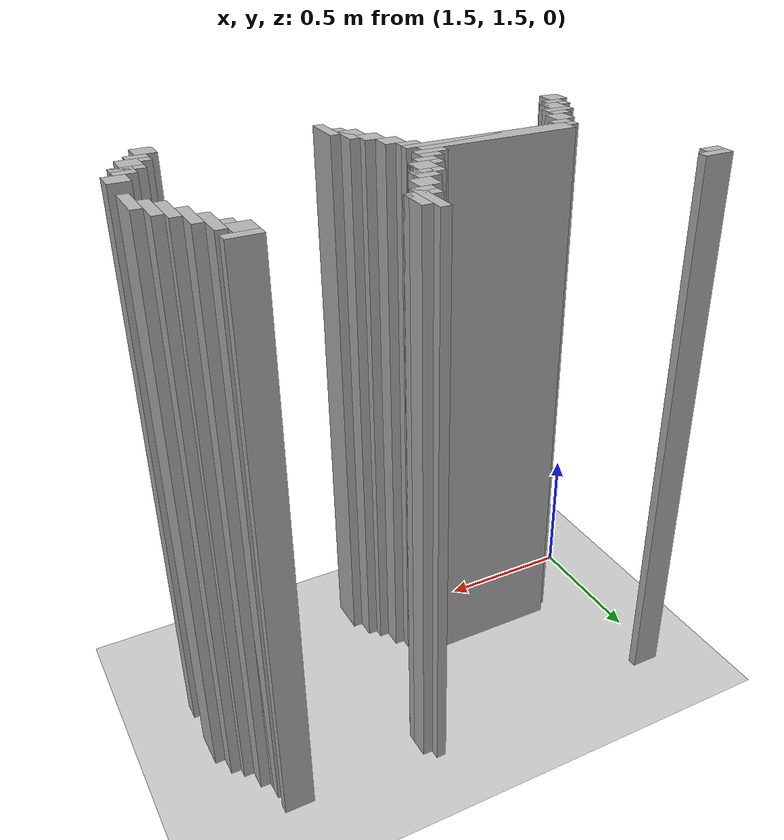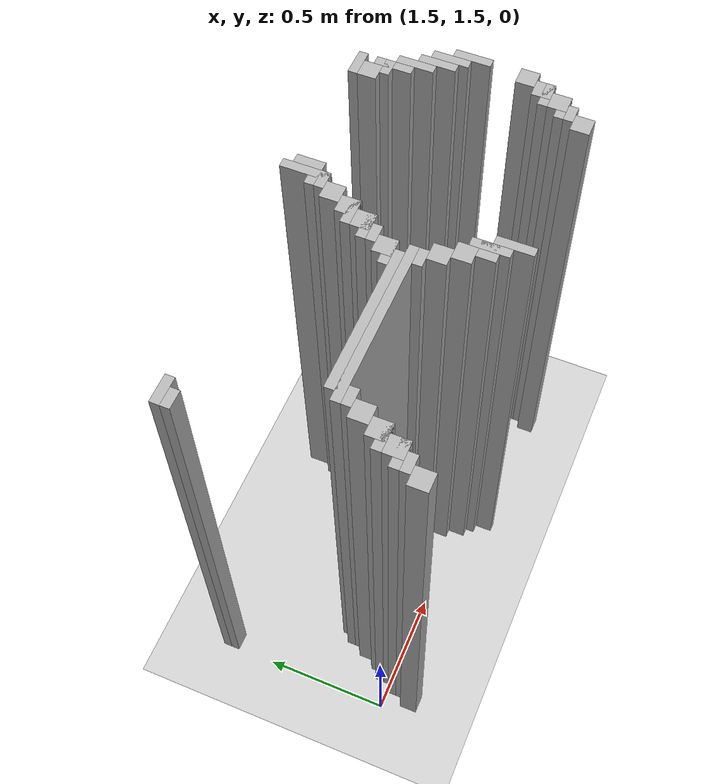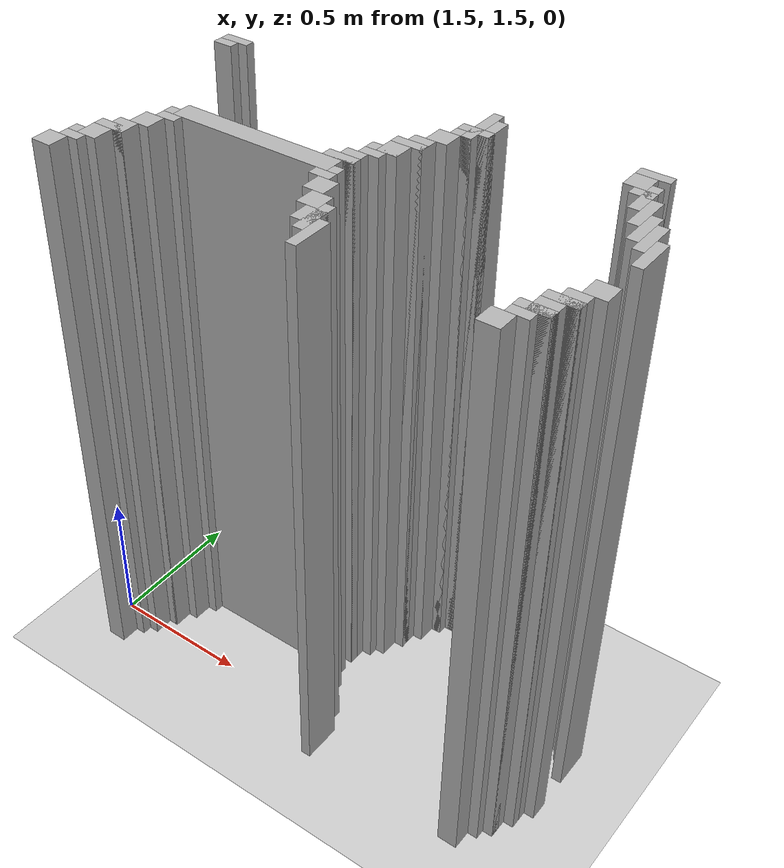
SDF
<sdf version="1.6">
 <world name="slam_world">
  <model name="ground_plane">
   <static>true</static>
   <link name="link">
    <collision name="collision">
     <geometry><plane><normal>0 0 1</normal><size>100 100</size></plane></geometry>
    </collision>
    <visual name="visual">
     <geometry><plane><normal>0 0 1</normal><size>100 100</size></plane></geometry>
     <material>
      <ambient>0.8 0.8 0.8 1</ambient>
      <diffuse>0.8 0.8 0.8 1</diffuse>
      <specular>0.8 0.8 0.8 1</specular>
     </material>
    </visual>
   </link>
  </model>
  <model name="wall_5016">
   <static>true</static>
   <pose>2.488399071925754 2.1751740139211138 1.0 0 0 0</pose>
   <link name="link">
    <collision name="collision">
     <geometry><box><size>0.03480278422273782 0.17401392111368907 2.0</size></box></geometry>
    </collision>
    <visual name="visual">
     <geometry><box><size>0.03480278422273782 0.17401392111368907 2.0</size></box></geometry>
     <material><ambient>0.5 0.5 0.5 1</ambient><diffuse>0.7 0.7 0.7 1</diffuse></material>
    </visual>
   </link>
  </model>
  <model name="wall_5032">
   <static>true</static>
   <pose>1.548723897911833 2.2099767981438516 1.0 0 0 0</pose>
   <link name="link">
    <collision name="collision">
     <geometry><box><size>0.10440835266821345 0.03480278422273782 2.0</size></box></geometry>
    </collision>
    <visual name="visual">
     <geometry><box><size>0.10440835266821345 0.03480278422273782 2.0</size></box></geometry>
     <material><ambient>0.5 0.5 0.5 1</ambient><diffuse>0.7 0.7 0.7 1</diffuse></material>
    </visual>
   </link>
  </model>
  <model name="wall_5033">
   <static>true</static>
   <pose>2.523201856148492 2.1751740139211138 1.0 0 0 0</pose>
   <link name="link">
    <collision name="collision">
     <geometry><box><size>0.03480278422273782 0.10440835266821345 2.0</size></box></geometry>
    </collision>
    <visual name="visual">
     <geometry><box><size>0.03480278422273782 0.10440835266821345 2.0</size></box></geometry>
     <material><ambient>0.5 0.5 0.5 1</ambient><diffuse>0.7 0.7 0.7 1</diffuse></material>
    </visual>
   </link>
  </model>
  <model name="wall_5034">
   <static>true</static>
   <pose>3.010440835266821 2.2099767981438516 1.0 0 0 0</pose>
   <link name="link">
    <collision name="collision">
     <geometry><box><size>0.10440835266821345 0.03480278422273782 2.0</size></box></geometry>
    </collision>
    <visual name="visual">
     <geometry><box><size>0.10440835266821345 0.03480278422273782 2.0</size></box></geometry>
     <material><ambient>0.5 0.5 0.5 1</ambient><diffuse>0.7 0.7 0.7 1</diffuse></material>
    </visual>
   </link>
  </model>
  <model name="wall_5046">
   <static>true</static>
   <pose>1.531322505800464 2.1751740139211138 1.0 0 0 0</pose>
   <link name="link">
    <collision name="collision">
     <geometry><box><size>0.06960556844547564 0.03480278422273782 2.0</size></box></geometry>
    </collision>
    <visual name="visual">
     <geometry><box><size>0.06960556844547564 0.03480278422273782 2.0</size></box></geometry>
     <material><ambient>0.5 0.5 0.5 1</ambient><diffuse>0.7 0.7 0.7 1</diffuse></material>
    </visual>
   </link>
  </model>
  <model name="wall_5047">
   <static>true</static>
   <pose>2.9930394431554523 2.1577726218097446 1.0 0 0 0</pose>
   <link name="link">
    <collision name="collision">
     <geometry><box><size>0.06960556844547564 0.06960556844547564 2.0</size></box></geometry>
    </collision>
    <visual name="visual">
     <geometry><box><size>0.06960556844547564 0.06960556844547564 2.0</size></box></geometry>
     <material><ambient>0.5 0.5 0.5 1</ambient><diffuse>0.7 0.7 0.7 1</diffuse></material>
    </visual>
   </link>
  </model>
  <model name="wall_5058">
   <static>true</static>
   <pose>2.488399071925754 2.140371229698376 1.0 0 0 0</pose>
   <link name="link">
    <collision name="collision">
     <geometry><box><size>0.10440835266821345 0.03480278422273782 2.0</size></box></geometry>
    </collision>
    <visual name="visual">
     <geometry><box><size>0.10440835266821345 0.03480278422273782 2.0</size></box></geometry>
     <material><ambient>0.5 0.5 0.5 1</ambient><diffuse>0.7 0.7 0.7 1</diffuse></material>
    </visual>
   </link>
  </model>
  <model name="wall_5059">
   <static>true</static>
   <pose>3.045243619489559 2.088167053364269 1.0 0 0 0</pose>
   <link name="link">
    <collision name="collision">
     <geometry><box><size>0.03480278422273782 0.13921113689095127 2.0</size></box></geometry>
    </collision>
    <visual name="visual">
     <geometry><box><size>0.03480278422273782 0.13921113689095127 2.0</size></box></geometry>
     <material><ambient>0.5 0.5 0.5 1</ambient><diffuse>0.7 0.7 0.7 1</diffuse></material>
    </visual>
   </link>
  </model>
  <model name="wall_5075">
   <static>true</static>
   <pose>2.470997679814385 2.105568445475638 1.0 0 0 0</pose>
   <link name="link">
    <collision name="collision">
     <geometry><box><size>0.06960556844547564 0.03480278422273782 2.0</size></box></geometry>
    </collision>
    <visual name="visual">
     <geometry><box><size>0.06960556844547564 0.03480278422273782 2.0</size></box></geometry>
     <material><ambient>0.5 0.5 0.5 1</ambient><diffuse>0.7 0.7 0.7 1</diffuse></material>
    </visual>
   </link>
  </model>
  <model name="wall_5076">
   <static>true</static>
   <pose>3.02784222737819 2.105568445475638 1.0 0 0 0</pose>
   <link name="link">
    <collision name="collision">
     <geometry><box><size>0.06960556844547564 0.03480278422273782 2.0</size></box></geometry>
    </collision>
    <visual name="visual">
     <geometry><box><size>0.06960556844547564 0.03480278422273782 2.0</size></box></geometry>
     <material><ambient>0.5 0.5 0.5 1</ambient><diffuse>0.7 0.7 0.7 1</diffuse></material>
    </visual>
   </link>
  </model>
  <model name="wall_5089">
   <static>true</static>
   <pose>2.436194895591647 2.053364269141531 1.0 0 0 0</pose>
   <link name="link">
    <collision name="collision">
     <geometry><box><size>0.06960556844547564 0.06960556844547564 2.0</size></box></geometry>
    </collision>
    <visual name="visual">
     <geometry><box><size>0.06960556844547564 0.06960556844547564 2.0</size></box></geometry>
     <material><ambient>0.5 0.5 0.5 1</ambient><diffuse>0.7 0.7 0.7 1</diffuse></material>
    </visual>
   </link>
  </model>
  <model name="wall_5090">
   <static>true</static>
   <pose>3.0800464037122968 2.0185614849187936 1.0 0 0 0</pose>
   <link name="link">
    <collision name="collision">
     <geometry><box><size>0.03480278422273782 0.13921113689095127 2.0</size></box></geometry>
    </collision>
    <visual name="visual">
     <geometry><box><size>0.03480278422273782 0.13921113689095127 2.0</size></box></geometry>
     <material><ambient>0.5 0.5 0.5 1</ambient><diffuse>0.7 0.7 0.7 1</diffuse></material>
    </visual>
   </link>
  </model>
  <model name="wall_5103">
   <static>true</static>
   <pose>2.4013921113689096 1.9837587006960555 1.0 0 0 0</pose>
   <link name="link">
    <collision name="collision">
     <geometry><box><size>0.06960556844547564 0.06960556844547564 2.0</size></box></geometry>
    </collision>
    <visual name="visual">
     <geometry><box><size>0.06960556844547564 0.06960556844547564 2.0</size></box></geometry>
     <material><ambient>0.5 0.5 0.5 1</ambient><diffuse>0.7 0.7 0.7 1</diffuse></material>
    </visual>
   </link>
  </model>
  <model name="wall_5104">
   <static>true</static>
   <pose>3.1148491879350346 1.948955916473318 1.0 0 0 0</pose>
   <link name="link">
    <collision name="collision">
     <geometry><box><size>0.03480278422273782 0.13921113689095127 2.0</size></box></geometry>
    </collision>
    <visual name="visual">
     <geometry><box><size>0.03480278422273782 0.13921113689095127 2.0</size></box></geometry>
     <material><ambient>0.5 0.5 0.5 1</ambient><diffuse>0.7 0.7 0.7 1</diffuse></material>
    </visual>
   </link>
  </model>
  <model name="wall_5117">
   <static>true</static>
   <pose>2.3839907192575405 1.9663573085846866 1.0 0 0 0</pose>
   <link name="link">
    <collision name="collision">
     <geometry><box><size>0.10440835266821345 0.03480278422273782 2.0</size></box></geometry>
    </collision>
    <visual name="visual">
     <geometry><box><size>0.10440835266821345 0.03480278422273782 2.0</size></box></geometry>
     <material><ambient>0.5 0.5 0.5 1</ambient><diffuse>0.7 0.7 0.7 1</diffuse></material>
    </visual>
   </link>
  </model>
  <model name="wall_5118">
   <static>true</static>
   <pose>3.1496519721577725 1.91415313225058 1.0 0 0 0</pose>
   <link name="link">
    <collision name="collision">
     <geometry><box><size>0.03480278422273782 0.13921113689095127 2.0</size></box></geometry>
    </collision>
    <visual name="visual">
     <geometry><box><size>0.03480278422273782 0.13921113689095127 2.0</size></box></geometry>
     <material><ambient>0.5 0.5 0.5 1</ambient><diffuse>0.7 0.7 0.7 1</diffuse></material>
    </visual>
   </link>
  </model>
  <model name="wall_5130">
   <static>true</static>
   <pose>2.3665893271461718 1.91415313225058 1.0 0 0 0</pose>
   <link name="link">
    <collision name="collision">
     <geometry><box><size>0.06960556844547564 0.06960556844547564 2.0</size></box></geometry>
    </collision>
    <visual name="visual">
     <geometry><box><size>0.06960556844547564 0.06960556844547564 2.0</size></box></geometry>
     <material><ambient>0.5 0.5 0.5 1</ambient><diffuse>0.7 0.7 0.7 1</diffuse></material>
    </visual>
   </link>
  </model>
  <model name="wall_5139">
   <static>true</static>
   <pose>2.3491879350348026 1.896751740139211 1.0 0 0 0</pose>
   <link name="link">
    <collision name="collision">
     <geometry><box><size>0.10440835266821345 0.03480278422273782 2.0</size></box></geometry>
    </collision>
    <visual name="visual">
     <geometry><box><size>0.10440835266821345 0.03480278422273782 2.0</size></box></geometry>
     <material><ambient>0.5 0.5 0.5 1</ambient><diffuse>0.7 0.7 0.7 1</diffuse></material>
    </visual>
   </link>
  </model>
  <model name="wall_5140">
   <static>true</static>
   <pose>3.1844547563805103 1.8445475638051043 1.0 0 0 0</pose>
   <link name="link">
    <collision name="collision">
     <geometry><box><size>0.03480278422273782 0.13921113689095127 2.0</size></box></geometry>
    </collision>
    <visual name="visual">
     <geometry><box><size>0.03480278422273782 0.13921113689095127 2.0</size></box></geometry>
     <material><ambient>0.5 0.5 0.5 1</ambient><diffuse>0.7 0.7 0.7 1</diffuse></material>
    </visual>
   </link>
  </model>
  <model name="wall_5152">
   <static>true</static>
   <pose>2.331786542923434 1.8619489559164732 1.0 0 0 0</pose>
   <link name="link">
    <collision name="collision">
     <geometry><box><size>0.06960556844547564 0.03480278422273782 2.0</size></box></geometry>
    </collision>
    <visual name="visual">
     <geometry><box><size>0.06960556844547564 0.03480278422273782 2.0</size></box></geometry>
     <material><ambient>0.5 0.5 0.5 1</ambient><diffuse>0.7 0.7 0.7 1</diffuse></material>
    </visual>
   </link>
  </model>
  <model name="wall_5158">
   <static>true</static>
   <pose>2.296983758700696 1.8097447795823665 1.0 0 0 0</pose>
   <link name="link">
    <collision name="collision">
     <geometry><box><size>0.06960556844547564 0.06960556844547564 2.0</size></box></geometry>
    </collision>
    <visual name="visual">
     <geometry><box><size>0.06960556844547564 0.06960556844547564 2.0</size></box></geometry>
     <material><ambient>0.5 0.5 0.5 1</ambient><diffuse>0.7 0.7 0.7 1</diffuse></material>
    </visual>
   </link>
  </model>
  <model name="wall_5172">
   <static>true</static>
   <pose>2.279582366589327 1.7923433874709975 1.0 0 0 0</pose>
   <link name="link">
    <collision name="collision">
     <geometry><box><size>0.10440835266821345 0.03480278422273782 2.0</size></box></geometry>
    </collision>
    <visual name="visual">
     <geometry><box><size>0.10440835266821345 0.03480278422273782 2.0</size></box></geometry>
     <material><ambient>0.5 0.5 0.5 1</ambient><diffuse>0.7 0.7 0.7 1</diffuse></material>
    </visual>
   </link>
  </model>
  <model name="wall_5185">
   <static>true</static>
   <pose>2.0185614849187936 1.740139211136891 1.0 0 0 0</pose>
   <link name="link">
    <collision name="collision">
     <geometry><box><size>0.5568445475638051 0.06960556844547564 2.0</size></box></geometry>
    </collision>
    <visual name="visual">
     <geometry><box><size>0.5568445475638051 0.06960556844547564 2.0</size></box></geometry>
     <material><ambient>0.5 0.5 0.5 1</ambient><diffuse>0.7 0.7 0.7 1</diffuse></material>
    </visual>
   </link>
  </model>
  <model name="wall_5195">
   <static>true</static>
   <pose>2.0185614849187936 1.722737819025522 1.0 0 0 0</pose>
   <link name="link">
    <collision name="collision">
     <geometry><box><size>0.6264501160092807 0.03480278422273782 2.0</size></box></geometry>
    </collision>
    <visual name="visual">
     <geometry><box><size>0.6264501160092807 0.03480278422273782 2.0</size></box></geometry>
     <material><ambient>0.5 0.5 0.5 1</ambient><diffuse>0.7 0.7 0.7 1</diffuse></material>
    </visual>
   </link>
  </model>
  <model name="wall_5208">
   <static>true</static>
   <pose>1.740139211136891 1.6879350348027842 1.0 0 0 0</pose>
   <link name="link">
    <collision name="collision">
     <geometry><box><size>0.06960556844547564 0.03480278422273782 2.0</size></box></geometry>
    </collision>
    <visual name="visual">
     <geometry><box><size>0.06960556844547564 0.03480278422273782 2.0</size></box></geometry>
     <material><ambient>0.5 0.5 0.5 1</ambient><diffuse>0.7 0.7 0.7 1</diffuse></material>
    </visual>
   </link>
  </model>
  <model name="wall_5209">
   <static>true</static>
   <pose>2.296983758700696 1.6879350348027842 1.0 0 0 0</pose>
   <link name="link">
    <collision name="collision">
     <geometry><box><size>0.06960556844547564 0.03480278422273782 2.0</size></box></geometry>
    </collision>
    <visual name="visual">
     <geometry><box><size>0.06960556844547564 0.03480278422273782 2.0</size></box></geometry>
     <material><ambient>0.5 0.5 0.5 1</ambient><diffuse>0.7 0.7 0.7 1</diffuse></material>
    </visual>
   </link>
  </model>
  <model name="wall_5223">
   <static>true</static>
   <pose>1.705336426914153 1.6357308584686774 1.0 0 0 0</pose>
   <link name="link">
    <collision name="collision">
     <geometry><box><size>0.06960556844547564 0.06960556844547564 2.0</size></box></geometry>
    </collision>
    <visual name="visual">
     <geometry><box><size>0.06960556844547564 0.06960556844547564 2.0</size></box></geometry>
     <material><ambient>0.5 0.5 0.5 1</ambient><diffuse>0.7 0.7 0.7 1</diffuse></material>
    </visual>
   </link>
  </model>
  <model name="wall_5224">
   <static>true</static>
   <pose>2.331786542923434 1.6357308584686774 1.0 0 0 0</pose>
   <link name="link">
    <collision name="collision">
     <geometry><box><size>0.06960556844547564 0.06960556844547564 2.0</size></box></geometry>
    </collision>
    <visual name="visual">
     <geometry><box><size>0.06960556844547564 0.06960556844547564 2.0</size></box></geometry>
     <material><ambient>0.5 0.5 0.5 1</ambient><diffuse>0.7 0.7 0.7 1</diffuse></material>
    </visual>
   </link>
  </model>
  <model name="wall_5225">
   <static>true</static>
   <pose>3.167053364269141 1.6357308584686774 1.0 0 0 0</pose>
   <link name="link">
    <collision name="collision">
     <geometry><box><size>0.06960556844547564 0.06960556844547564 2.0</size></box></geometry>
    </collision>
    <visual name="visual">
     <geometry><box><size>0.06960556844547564 0.06960556844547564 2.0</size></box></geometry>
     <material><ambient>0.5 0.5 0.5 1</ambient><diffuse>0.7 0.7 0.7 1</diffuse></material>
    </visual>
   </link>
  </model>
  <model name="wall_5238">
   <static>true</static>
   <pose>1.6705336426914152 1.5661252900232019 1.0 0 0 0</pose>
   <link name="link">
    <collision name="collision">
     <geometry><box><size>0.06960556844547564 0.06960556844547564 2.0</size></box></geometry>
    </collision>
    <visual name="visual">
     <geometry><box><size>0.06960556844547564 0.06960556844547564 2.0</size></box></geometry>
     <material><ambient>0.5 0.5 0.5 1</ambient><diffuse>0.7 0.7 0.7 1</diffuse></material>
    </visual>
   </link>
  </model>
  <model name="wall_5239">
   <static>true</static>
   <pose>2.3665893271461718 1.5661252900232019 1.0 0 0 0</pose>
   <link name="link">
    <collision name="collision">
     <geometry><box><size>0.06960556844547564 0.06960556844547564 2.0</size></box></geometry>
    </collision>
    <visual name="visual">
     <geometry><box><size>0.06960556844547564 0.06960556844547564 2.0</size></box></geometry>
     <material><ambient>0.5 0.5 0.5 1</ambient><diffuse>0.7 0.7 0.7 1</diffuse></material>
    </visual>
   </link>
  </model>
  <model name="wall_5240">
   <static>true</static>
   <pose>3.1322505800464038 1.5661252900232019 1.0 0 0 0</pose>
   <link name="link">
    <collision name="collision">
     <geometry><box><size>0.06960556844547564 0.06960556844547564 2.0</size></box></geometry>
    </collision>
    <visual name="visual">
     <geometry><box><size>0.06960556844547564 0.06960556844547564 2.0</size></box></geometry>
     <material><ambient>0.5 0.5 0.5 1</ambient><diffuse>0.7 0.7 0.7 1</diffuse></material>
    </visual>
   </link>
  </model>
  <model name="wall_5253">
   <static>true</static>
   <pose>1.6531322505800463 1.548723897911833 1.0 0 0 0</pose>
   <link name="link">
    <collision name="collision">
     <geometry><box><size>0.10440835266821345 0.03480278422273782 2.0</size></box></geometry>
    </collision>
    <visual name="visual">
     <geometry><box><size>0.10440835266821345 0.03480278422273782 2.0</size></box></geometry>
     <material><ambient>0.5 0.5 0.5 1</ambient><diffuse>0.7 0.7 0.7 1</diffuse></material>
    </visual>
   </link>
  </model>
  <model name="wall_5254">
   <static>true</static>
   <pose>2.4187935034802783 1.4965197215777262 1.0 0 0 0</pose>
   <link name="link">
    <collision name="collision">
     <geometry><box><size>0.03480278422273782 0.13921113689095127 2.0</size></box></geometry>
    </collision>
    <visual name="visual">
     <geometry><box><size>0.03480278422273782 0.13921113689095127 2.0</size></box></geometry>
     <material><ambient>0.5 0.5 0.5 1</ambient><diffuse>0.7 0.7 0.7 1</diffuse></material>
    </visual>
   </link>
  </model>
  <model name="wall_5255">
   <static>true</static>
   <pose>3.1148491879350346 1.548723897911833 1.0 0 0 0</pose>
   <link name="link">
    <collision name="collision">
     <geometry><box><size>0.10440835266821345 0.03480278422273782 2.0</size></box></geometry>
    </collision>
    <visual name="visual">
     <geometry><box><size>0.10440835266821345 0.03480278422273782 2.0</size></box></geometry>
     <material><ambient>0.5 0.5 0.5 1</ambient><diffuse>0.7 0.7 0.7 1</diffuse></material>
    </visual>
   </link>
  </model>
  <model name="wall_5268">
   <static>true</static>
   <pose>1.6357308584686774 1.4965197215777262 1.0 0 0 0</pose>
   <link name="link">
    <collision name="collision">
     <geometry><box><size>0.06960556844547564 0.06960556844547564 2.0</size></box></geometry>
    </collision>
    <visual name="visual">
     <geometry><box><size>0.06960556844547564 0.06960556844547564 2.0</size></box></geometry>
     <material><ambient>0.5 0.5 0.5 1</ambient><diffuse>0.7 0.7 0.7 1</diffuse></material>
    </visual>
   </link>
  </model>
  <model name="wall_5269">
   <static>true</static>
   <pose>2.4013921113689096 1.4965197215777262 1.0 0 0 0</pose>
   <link name="link">
    <collision name="collision">
     <geometry><box><size>0.06960556844547564 0.06960556844547564 2.0</size></box></geometry>
    </collision>
    <visual name="visual">
     <geometry><box><size>0.06960556844547564 0.06960556844547564 2.0</size></box></geometry>
     <material><ambient>0.5 0.5 0.5 1</ambient><diffuse>0.7 0.7 0.7 1</diffuse></material>
    </visual>
   </link>
  </model>
  <model name="wall_5270">
   <static>true</static>
   <pose>3.097447795823666 1.4965197215777262 1.0 0 0 0</pose>
   <link name="link">
    <collision name="collision">
     <geometry><box><size>0.06960556844547564 0.06960556844547564 2.0</size></box></geometry>
    </collision>
    <visual name="visual">
     <geometry><box><size>0.06960556844547564 0.06960556844547564 2.0</size></box></geometry>
     <material><ambient>0.5 0.5 0.5 1</ambient><diffuse>0.7 0.7 0.7 1</diffuse></material>
    </visual>
   </link>
  </model>
  <model name="wall_5279">
   <static>true</static>
   <pose>1.6183294663573085 1.4791183294663572 1.0 0 0 0</pose>
   <link name="link">
    <collision name="collision">
     <geometry><box><size>0.10440835266821345 0.03480278422273782 2.0</size></box></geometry>
    </collision>
    <visual name="visual">
     <geometry><box><size>0.10440835266821345 0.03480278422273782 2.0</size></box></geometry>
     <material><ambient>0.5 0.5 0.5 1</ambient><diffuse>0.7 0.7 0.7 1</diffuse></material>
    </visual>
   </link>
  </model>
  <model name="wall_5280">
   <static>true</static>
   <pose>2.453596287703016 1.4269141531322505 1.0 0 0 0</pose>
   <link name="link">
    <collision name="collision">
     <geometry><box><size>0.03480278422273782 0.13921113689095127 2.0</size></box></geometry>
    </collision>
    <visual name="visual">
     <geometry><box><size>0.03480278422273782 0.13921113689095127 2.0</size></box></geometry>
     <material><ambient>0.5 0.5 0.5 1</ambient><diffuse>0.7 0.7 0.7 1</diffuse></material>
    </visual>
   </link>
  </model>
  <model name="wall_5281">
   <static>true</static>
   <pose>3.0800464037122968 1.4791183294663572 1.0 0 0 0</pose>
   <link name="link">
    <collision name="collision">
     <geometry><box><size>0.10440835266821345 0.03480278422273782 2.0</size></box></geometry>
    </collision>
    <visual name="visual">
     <geometry><box><size>0.10440835266821345 0.03480278422273782 2.0</size></box></geometry>
     <material><ambient>0.5 0.5 0.5 1</ambient><diffuse>0.7 0.7 0.7 1</diffuse></material>
    </visual>
   </link>
  </model>
  <model name="wall_5293">
   <static>true</static>
   <pose>1.6009280742459395 1.4443155452436194 1.0 0 0 0</pose>
   <link name="link">
    <collision name="collision">
     <geometry><box><size>0.06960556844547564 0.03480278422273782 2.0</size></box></geometry>
    </collision>
    <visual name="visual">
     <geometry><box><size>0.06960556844547564 0.03480278422273782 2.0</size></box></geometry>
     <material><ambient>0.5 0.5 0.5 1</ambient><diffuse>0.7 0.7 0.7 1</diffuse></material>
    </visual>
   </link>
  </model>
  <model name="wall_5294">
   <static>true</static>
   <pose>3.062645011600928 1.4443155452436194 1.0 0 0 0</pose>
   <link name="link">
    <collision name="collision">
     <geometry><box><size>0.06960556844547564 0.03480278422273782 2.0</size></box></geometry>
    </collision>
    <visual name="visual">
     <geometry><box><size>0.06960556844547564 0.03480278422273782 2.0</size></box></geometry>
     <material><ambient>0.5 0.5 0.5 1</ambient><diffuse>0.7 0.7 0.7 1</diffuse></material>
    </visual>
   </link>
  </model>
  <model name="wall_5301">
   <static>true</static>
   <pose>1.5661252900232019 1.3921113689095126 1.0 0 0 0</pose>
   <link name="link">
    <collision name="collision">
     <geometry><box><size>0.06960556844547564 0.06960556844547564 2.0</size></box></geometry>
    </collision>
    <visual name="visual">
     <geometry><box><size>0.06960556844547564 0.06960556844547564 2.0</size></box></geometry>
     <material><ambient>0.5 0.5 0.5 1</ambient><diffuse>0.7 0.7 0.7 1</diffuse></material>
    </visual>
   </link>
  </model>
  <model name="wall_5303">
   <static>true</static>
   <pose>3.02784222737819 1.3921113689095126 1.0 0 0 0</pose>
   <link name="link">
    <collision name="collision">
     <geometry><box><size>0.06960556844547564 0.06960556844547564 2.0</size></box></geometry>
    </collision>
    <visual name="visual">
     <geometry><box><size>0.06960556844547564 0.06960556844547564 2.0</size></box></geometry>
     <material><ambient>0.5 0.5 0.5 1</ambient><diffuse>0.7 0.7 0.7 1</diffuse></material>
    </visual>
   </link>
  </model>
 </world>
</sdf>
